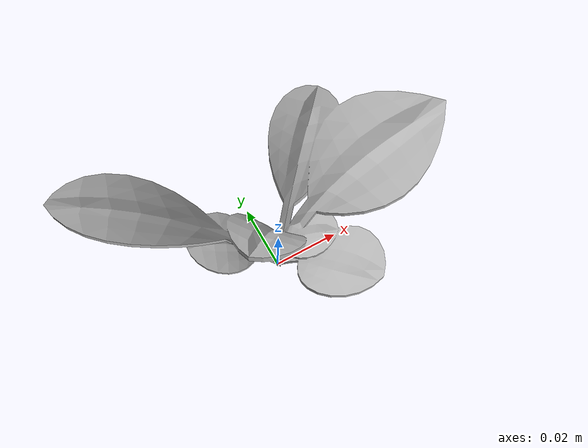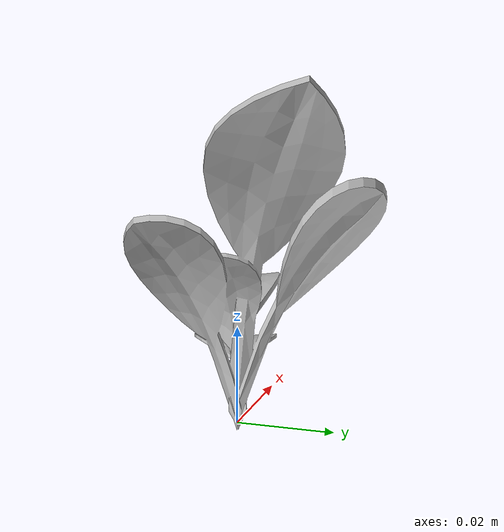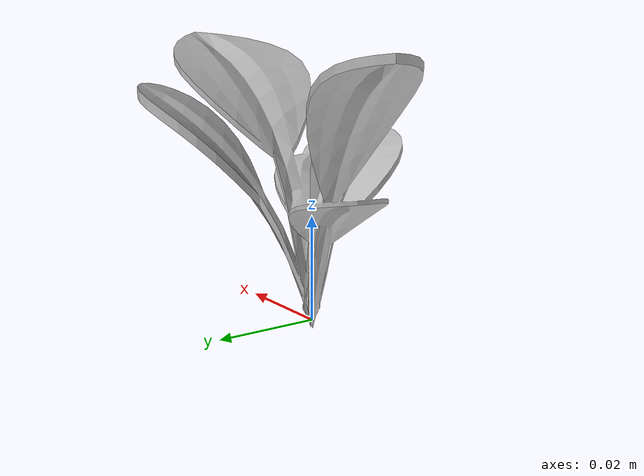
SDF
<sdf version="1.6">
  <model name="sugar_beet_7">
    <static>true</static>
    <link name="body">
      <visual name="visual">
        <geometry>
          <mesh>
            <uri>file:///sugar_beet_7/media/sugar_beet.dae</uri>
          </mesh>
        </geometry>
      </visual>
    </link>
  </model>
</sdf>
